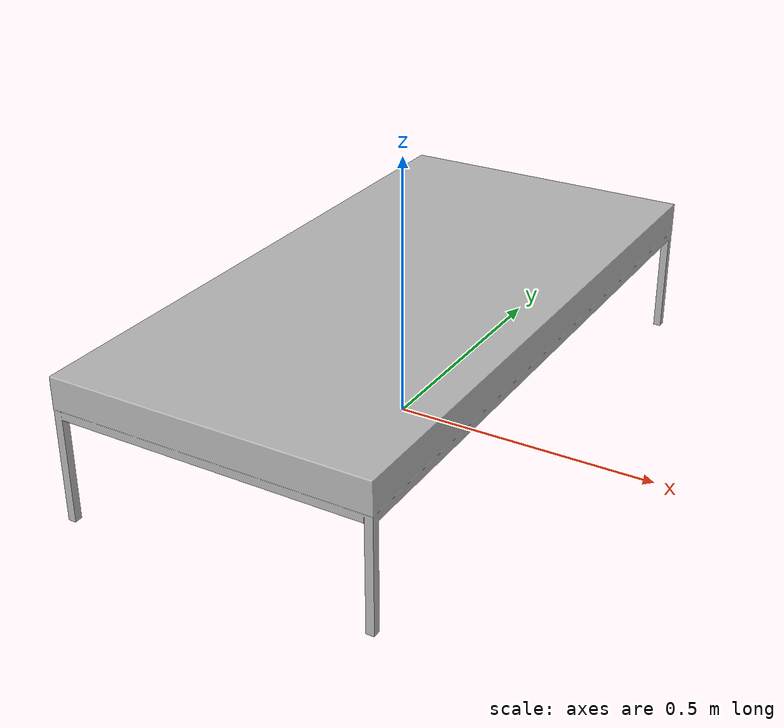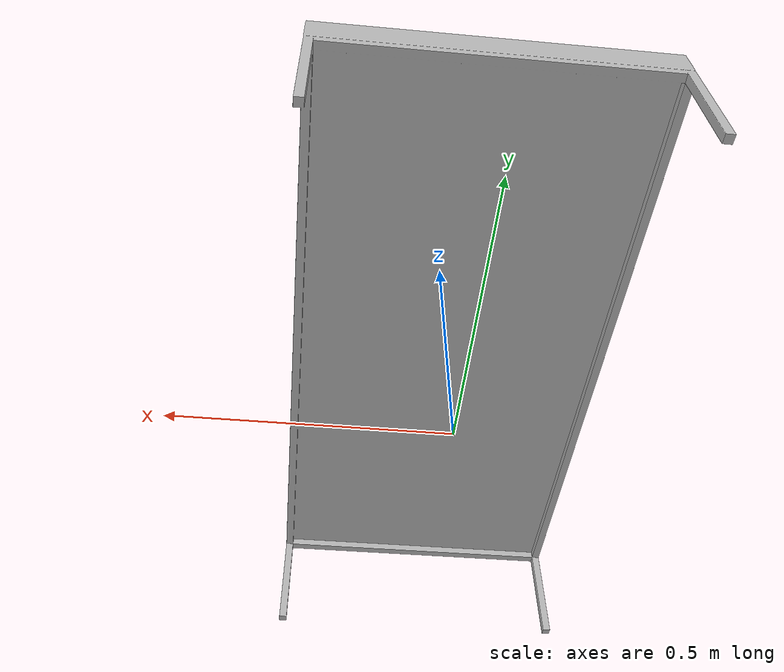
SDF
<?xml version='1.0'?>
<sdf version='1.4'>
  <model name='s__1016'>
    <pose>0 0 0 0 0 0</pose>
    <static>true</static>
    <link name='link'>
      <collision name='collision'>
        <pose>0 0 0 0 0 0</pose>
        <geometry>
          <box>
            <size>0.59 1.18 2</size>
          </box>
        </geometry>
      </collision>
      <visual name='visual'>
        <pose>0 0 0 0 0 0</pose>
        <geometry>
          <mesh><uri>model://s__1016/s__1016.dae</uri></mesh>
        </geometry>
      </visual>
    </link>
  </model>
</sdf>
